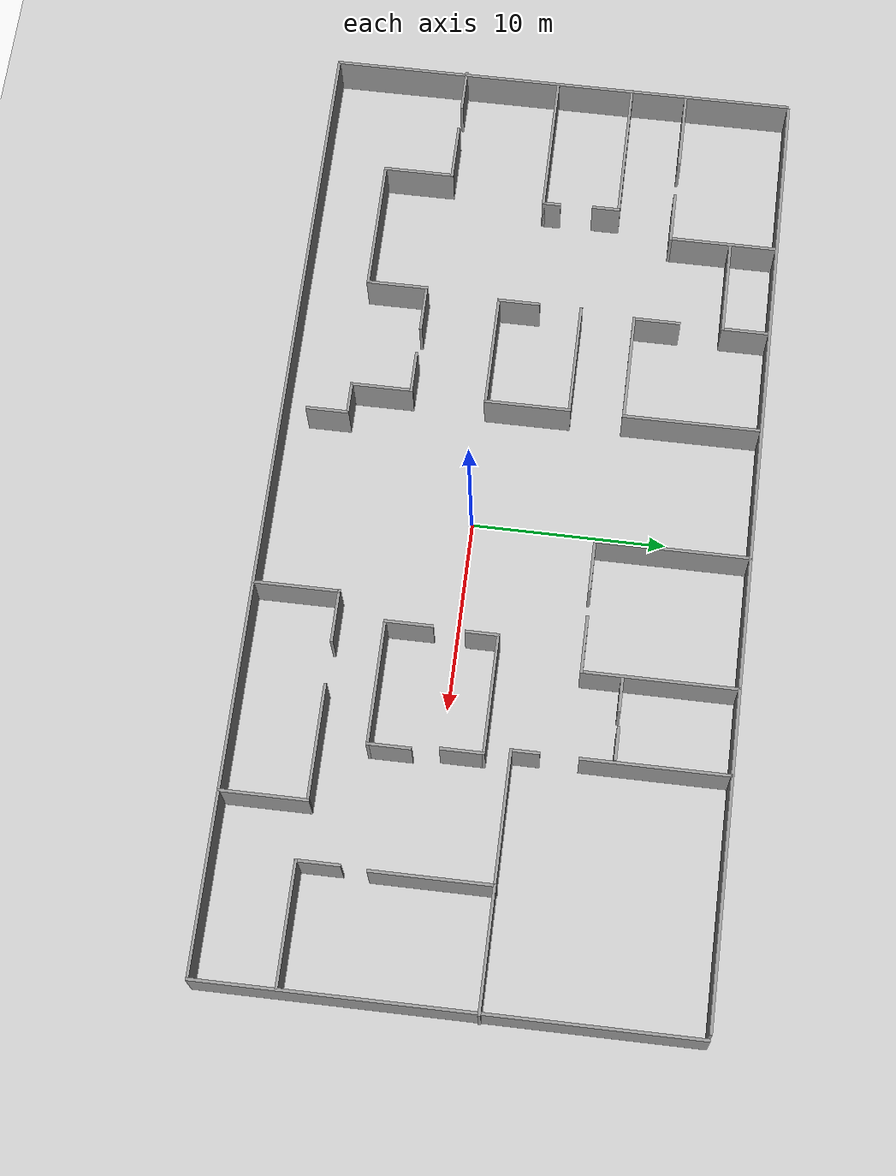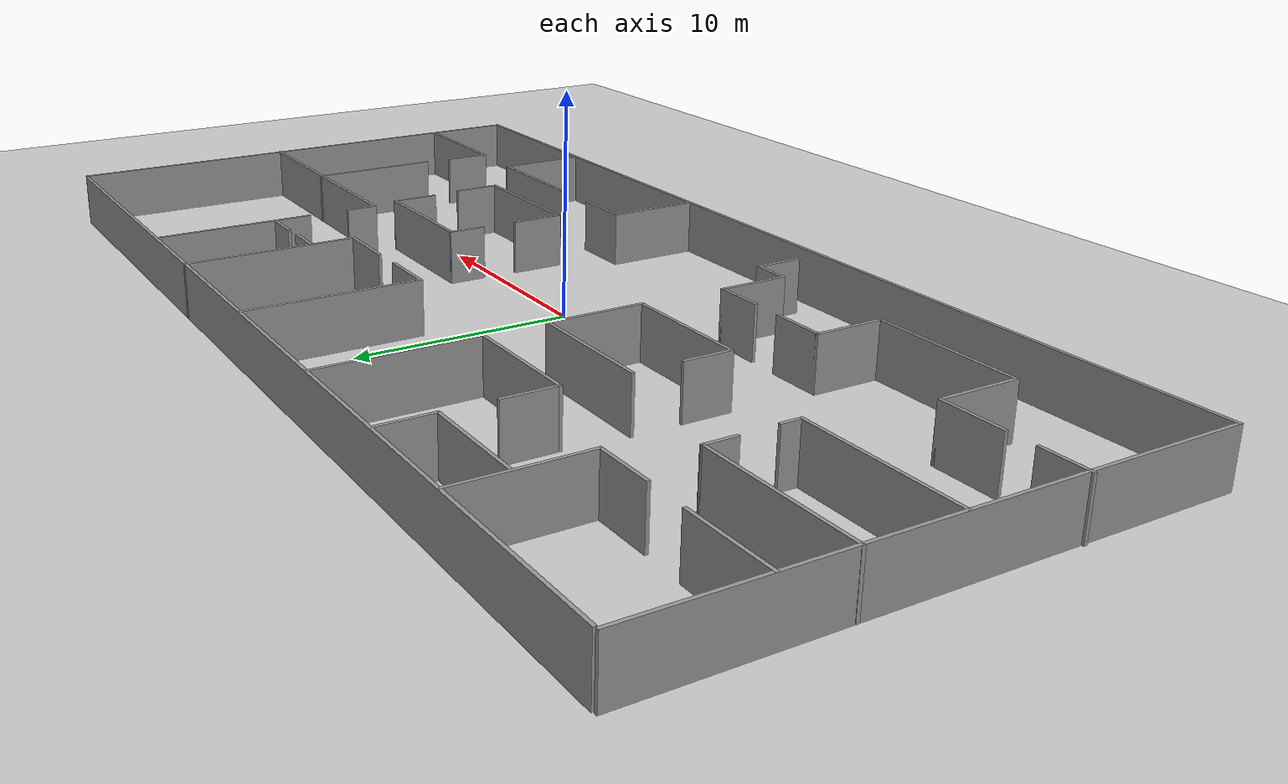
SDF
<sdf version="1.6">
 <world name="default">
  <light name="sun" type="directional">
   <pose>0 0 10 0 -0 0</pose>
   <diffuse>0.8 0.8 0.8 1</diffuse>
   <specular>0.2 0.2 0.2 1</specular>
   <attenuation>
    <range>1000</range>
    <constant>0.9</constant>
    <linear>0.01</linear>
    <quadratic>0.001</quadratic>
   </attenuation>
   <direction>-0.5 0.1 -0.9</direction>
  </light>
  <model name="ground_plane">
   <static>1</static>
   <link name="link">
    <collision name="collision">
     <geometry><plane><normal>0 0 1</normal><size>100 100</size></plane></geometry>
     <surface><friction><ode><mu>100</mu><mu2>50</mu2></ode></friction></surface>
    </collision>
    <visual name="visual">
     <cast_shadows>0</cast_shadows>
     <geometry><plane><normal>0 0 1</normal><size>100 100</size></plane></geometry>
     <material>
      <script><uri>file://media/materials/scripts/gazebo.material</uri><name>Gazebo/Grey</name></script>
     </material>
    </visual>
   </link>
  </model>
  <gravity>0 0 -9.8</gravity>
  <magnetic_field>6e-06 2.3e-05 -4.2e-05</magnetic_field>
  <atmosphere type="adiabatic"/>
  <physics name="default_physics" default="0" type="ode">
   <max_step_size>0.001</max_step_size>
   <real_time_factor>1</real_time_factor>
   <real_time_update_rate>1000</real_time_update_rate>
  </physics>
  <scene><ambient>0.4 0.4 0.4 1</ambient><background>0.7 0.7 0.7 1</background><shadows>1</shadows></scene>
  <spherical_coordinates>
   <surface_model>EARTH_WGS84</surface_model>
   <latitude_deg>0</latitude_deg>
   <longitude_deg>0</longitude_deg>
   <elevation>0</elevation>
   <heading_deg>0</heading_deg>
  </spherical_coordinates>
  <model name="simple_workshop">
   <pose>-0.060453 1.96755 0 0 -0 0</pose>
   <link name="Wall_100">
    <collision name="Wall_100_Collision">
     <geometry><box><size>2.25 0.15 2.5</size></box></geometry>
     <pose>0 0 1.25 0 -0 0</pose>
    </collision>
    <visual name="Wall_100_Visual">
     <pose>0 0 1.25 0 -0 0</pose>
     <geometry><box><size>2.25 0.15 2.5</size></box></geometry>
     <material>
      <script><uri>file://media/materials/scripts/gazebo.material</uri><name>Gazebo/Grey</name></script>
      <ambient>1 1 1 1</ambient>
     </material>
     <meta><layer>0</layer></meta>
    </visual>
    <pose>-7.13341 -5.85126 0 0 -0 0</pose>
   </link>
   <link name="Wall_101">
    <collision name="Wall_101_Collision">
     <geometry><box><size>3.25 0.15 2.5</size></box></geometry>
     <pose>0 0 1.25 0 -0 0</pose>
    </collision>
    <visual name="Wall_101_Visual">
     <pose>0 0 1.25 0 -0 0</pose>
     <geometry><box><size>3.25 0.15 2.5</size></box></geometry>
     <material>
      <script><uri>file://media/materials/scripts/gazebo.material</uri><name>Gazebo/Grey</name></script>
      <ambient>1 1 1 1</ambient>
     </material>
     <meta><layer>0</layer></meta>
    </visual>
    <pose>-6.08341 -7.40126 0 0 -0 -1.5708</pose>
   </link>
   <link name="Wall_102">
    <collision name="Wall_102_Collision">
     <geometry><box><size>1.75 0.15 2.5</size></box></geometry>
     <pose>0 0 1.25 0 -0 0</pose>
    </collision>
    <visual name="Wall_102_Visual">
     <pose>0 0 1.25 0 -0 0</pose>
     <geometry><box><size>1.75 0.15 2.5</size></box></geometry>
     <material>
      <script><uri>file://media/materials/scripts/gazebo.material</uri><name>Gazebo/Grey</name></script>
      <ambient>1 1 1 1</ambient>
     </material>
     <meta><layer>0</layer></meta>
    </visual>
    <pose>-5.28341 -8.95126 0 0 -0 0</pose>
   </link>
   <link name="Wall_103">
    <collision name="Wall_103_Collision">
     <geometry><box><size>2.25 0.15 2.5</size></box></geometry>
     <pose>0 0 1.25 0 -0 0</pose>
    </collision>
    <visual name="Wall_103_Visual">
     <pose>0 0 1.25 0 -0 0</pose>
     <geometry><box><size>2.25 0.15 2.5</size></box></geometry>
     <material>
      <script><uri>file://media/materials/scripts/gazebo.material</uri><name>Gazebo/Grey</name></script>
      <ambient>1 1 1 1</ambient>
     </material>
     <meta><layer>0</layer></meta>
    </visual>
    <pose>-4.48341 -10.0013 0 0 -0 -1.5708</pose>
   </link>
   <link name="Wall_106">
    <collision name="Wall_106_Collision">
     <geometry><box><size>4.5 0.15 2.5</size></box></geometry>
     <pose>0 0 1.25 0 -0 0</pose>
    </collision>
    <visual name="Wall_106_Visual">
     <pose>0 0 1.25 0 -0 0</pose>
     <geometry><box><size>4.5 0.15 2.5</size></box></geometry>
     <material>
      <script><uri>file://media/materials/scripts/gazebo.material</uri><name>Gazebo/Grey</name></script>
      <ambient>1 1 1 1</ambient>
     </material>
     <meta><layer>0</layer></meta>
    </visual>
    <pose>5.24768 -10.165 0 0 -0 1.5708</pose>
   </link>
   <link name="Wall_107">
    <collision name="Wall_107_Collision">
     <geometry><box><size>2.75 0.15 2.5</size></box></geometry>
     <pose>0 0 1.25 0 -0 0</pose>
    </collision>
    <visual name="Wall_107_Visual">
     <pose>0 0 1.25 0 -0 0</pose>
     <geometry><box><size>2.75 0.15 2.5</size></box></geometry>
     <material>
      <script><uri>file://media/materials/scripts/gazebo.material</uri><name>Gazebo/Grey</name></script>
      <ambient>1 1 1 1</ambient>
     </material>
     <meta><layer>0</layer></meta>
    </visual>
    <pose>6.54768 -7.98999 0 0 -0 0</pose>
   </link>
   <link name="Wall_109">
    <collision name="Wall_109_Collision">
     <geometry><box><size>6 0.15 2.5</size></box></geometry>
     <pose>0 0 1.25 0 -0 0</pose>
    </collision>
    <visual name="Wall_109_Visual">
     <pose>0 0 1.25 0 -0 0</pose>
     <geometry><box><size>6 0.15 2.5</size></box></geometry>
     <material>
      <script><uri>file://media/materials/scripts/gazebo.material</uri><name>Gazebo/Grey</name></script>
      <ambient>1 1 1 1</ambient>
     </material>
     <meta><layer>0</layer></meta>
    </visual>
    <pose>13.0977 -7.97782 0 0 -0 0</pose>
   </link>
   <link name="Wall_110">
    <collision name="Wall_110_Collision">
     <geometry><box><size>4.5 0.15 2.5</size></box></geometry>
     <pose>0 0 1.25 0 -0 0</pose>
    </collision>
    <visual name="Wall_110_Visual">
     <pose>0 0 1.25 0 -0 0</pose>
     <geometry><box><size>4.5 0.15 2.5</size></box></geometry>
     <material>
      <script><uri>file://media/materials/scripts/gazebo.material</uri><name>Gazebo/Grey</name></script>
      <ambient>1 1 1 1</ambient>
     </material>
     <meta><layer>0</layer></meta>
    </visual>
    <pose>16.0227 -10.1528 0 0 -0 -1.5708</pose>
   </link>
   <link name="Wall_112">
    <collision name="Wall_112_Collision">
     <geometry><box><size>6.25 0.15 2.5</size></box></geometry>
     <pose>0 0 1.25 0 -0 0</pose>
    </collision>
    <visual name="Wall_112_Visual">
     <pose>0 0 1.25 0 -0 0</pose>
     <geometry><box><size>6.25 0.15 2.5</size></box></geometry>
     <material>
      <script><uri>file://media/materials/scripts/gazebo.material</uri><name>Gazebo/Grey</name></script>
      <ambient>1 1 1 1</ambient>
     </material>
     <meta><layer>0</layer></meta>
    </visual>
    <pose>19.1081 -1.52956 0 0 -0 -1.5708</pose>
   </link>
   <link name="Wall_114">
    <collision name="Wall_114_Collision">
     <geometry><box><size>2.25 0.15 2.5</size></box></geometry>
     <pose>0 0 1.25 0 -0 0</pose>
    </collision>
    <visual name="Wall_114_Visual">
     <pose>0 0 1.25 0 -0 0</pose>
     <geometry><box><size>2.25 0.15 2.5</size></box></geometry>
     <material>
      <script><uri>file://media/materials/scripts/gazebo.material</uri><name>Gazebo/Grey</name></script>
      <ambient>1 1 1 1</ambient>
     </material>
     <meta><layer>0</layer></meta>
    </visual>
    <pose>19.0026 -7.05781 0 0 -0 -1.5708</pose>
   </link>
   <link name="Wall_115">
    <collision name="Wall_115_Collision">
     <geometry><box><size>6.25 0.15 2.5</size></box></geometry>
     <pose>0 0 1.25 0 -0 0</pose>
    </collision>
    <visual name="Wall_115_Visual">
     <pose>0 0 1.25 0 -0 0</pose>
     <geometry><box><size>6.25 0.15 2.5</size></box></geometry>
     <material>
      <script><uri>file://media/materials/scripts/gazebo.material</uri><name>Gazebo/Grey</name></script>
      <ambient>1 1 1 1</ambient>
     </material>
     <meta><layer>0</layer></meta>
    </visual>
    <pose>22.0526 -8.10781 0 0 -0 0</pose>
   </link>
   <link name="Wall_34">
    <collision name="Wall_34_Collision">
     <geometry><box><size>50 0.15 2.5</size></box></geometry>
     <pose>0 0 1.25 0 -0 0</pose>
    </collision>
    <visual name="Wall_34_Visual">
     <pose>0 0 1.25 0 -0 0</pose>
     <geometry><box><size>50 0.15 2.5</size></box></geometry>
     <material>
      <script><uri>file://media/materials/scripts/gazebo.material</uri><name>Gazebo/Grey</name></script>
      <ambient>1 1 1 1</ambient>
     </material>
     <meta><layer>0</layer></meta>
    </visual>
    <pose>-0.054311 12.3272 0 0 -0 0</pose>
   </link>
   <link name="Wall_38">
    <collision name="Wall_38_Collision">
     <geometry><box><size>24.75 0.15 2.5</size></box></geometry>
     <pose>0 0 1.25 0 -0 0</pose>
    </collision>
    <visual name="Wall_38_Visual">
     <pose>0 0 1.25 0 -0 0</pose>
     <geometry><box><size>24.75 0.15 2.5</size></box></geometry>
     <material>
      <script><uri>file://media/materials/scripts/gazebo.material</uri><name>Gazebo/Grey</name></script>
      <ambient>1 1 1 1</ambient>
     </material>
     <meta><layer>0</layer></meta>
    </visual>
    <pose>-25.1613 -0.03929 0 0 -0 -1.5708</pose>
   </link>
   <link name="Wall_39">
    <collision name="Wall_39_Collision">
     <geometry><box><size>50.5 0.15 2.5</size></box></geometry>
     <pose>0 0 1.25 0 -0 0</pose>
    </collision>
    <visual name="Wall_39_Visual">
     <pose>0 0 1.25 0 -0 0</pose>
     <geometry><box><size>50.5 0.15 2.5</size></box></geometry>
     <material>
      <script><uri>file://media/materials/scripts/gazebo.material</uri><name>Gazebo/Grey</name></script>
      <ambient>1 1 1 1</ambient>
     </material>
     <meta><layer>0</layer></meta>
    </visual>
    <pose>0.013678 -12.3393 0 0 -0 0</pose>
   </link>
   <link name="Wall_40">
    <collision name="Wall_40_Collision">
     <geometry><box><size>24.75 0.15 2.5</size></box></geometry>
     <pose>0 0 1.25 0 -0 0</pose>
    </collision>
    <visual name="Wall_40_Visual">
     <pose>0 0 1.25 0 -0 0</pose>
     <geometry><box><size>24.75 0.15 2.5</size></box></geometry>
     <material>
      <script><uri>file://media/materials/scripts/gazebo.material</uri><name>Gazebo/Grey</name></script>
      <ambient>1 1 1 1</ambient>
     </material>
     <meta><layer>0</layer></meta>
    </visual>
    <pose>25.1887 -0.03929 0 0 -0 1.5708</pose>
   </link>
   <link name="Wall_44">
    <collision name="Wall_44_Collision">
     <geometry><box><size>4.25 0.15 2.5</size></box></geometry>
     <pose>0 0 1.25 0 -0 0</pose>
    </collision>
    <visual name="Wall_44_Visual">
     <pose>0 0 1.25 0 -0 0</pose>
     <geometry><box><size>4.25 0.15 2.5</size></box></geometry>
     <material>
      <script><uri>file://media/materials/scripts/gazebo.material</uri><name>Gazebo/Grey</name></script>
      <ambient>1 1 1 1</ambient>
     </material>
     <meta><layer>0</layer></meta>
    </visual>
    <pose>-23.1079 6.73064 0 0 -0 0</pose>
   </link>
   <link name="Wall_46">
    <collision name="Wall_46_Collision">
     <geometry><box><size>5.75 0.15 2.5</size></box></geometry>
     <pose>0 0 1.25 0 -0 0</pose>
    </collision>
    <visual name="Wall_46_Visual">
     <pose>0 0 1.25 0 -0 0</pose>
     <geometry><box><size>5.75 0.15 2.5</size></box></geometry>
     <material>
      <script><uri>file://media/materials/scripts/gazebo.material</uri><name>Gazebo/Grey</name></script>
      <ambient>1 1 1 1</ambient>
     </material>
     <meta><layer>0</layer></meta>
    </visual>
    <pose>-16.4318 9.488 0 0 -0 -1.5708</pose>
   </link>
   <link name="Wall_47">
    <collision name="Wall_47_Collision">
     <geometry><box><size>2.75 0.15 2.5</size></box></geometry>
     <pose>0 0 1.25 0 -0 0</pose>
    </collision>
    <visual name="Wall_47_Visual">
     <pose>0 0 1.25 0 -0 0</pose>
     <geometry><box><size>2.75 0.15 2.5</size></box></geometry>
     <material>
      <script><uri>file://media/materials/scripts/gazebo.material</uri><name>Gazebo/Grey</name></script>
      <ambient>1 1 1 1</ambient>
     </material>
     <meta><layer>0</layer></meta>
    </visual>
    <pose>-17.7318 6.688 0 0 -0 3.14159</pose>
   </link>
   <link name="Wall_49">
    <collision name="Wall_49_Collision">
     <geometry><box><size>5 0.15 2.5</size></box></geometry>
     <pose>0 0 1.25 0 -0 0</pose>
    </collision>
    <visual name="Wall_49_Visual">
     <pose>0 0 1.25 0 -0 0</pose>
     <geometry><box><size>5 0.15 2.5</size></box></geometry>
     <material>
      <script><uri>file://media/materials/scripts/gazebo.material</uri><name>Gazebo/Grey</name></script>
      <ambient>1 1 1 1</ambient>
     </material>
     <meta><layer>0</layer></meta>
    </visual>
    <pose>-13.8672 9.86876 0 0 -0 0</pose>
   </link>
   <link name="Wall_50">
    <collision name="Wall_50_Collision">
     <geometry><box><size>2.5 0.15 2.5</size></box></geometry>
     <pose>0 0 1.25 0 -0 0</pose>
    </collision>
    <visual name="Wall_50_Visual">
     <pose>0 0 1.25 0 -0 0</pose>
     <geometry><box><size>2.5 0.15 2.5</size></box></geometry>
     <material>
      <script><uri>file://media/materials/scripts/gazebo.material</uri><name>Gazebo/Grey</name></script>
      <ambient>1 1 1 1</ambient>
     </material>
     <meta><layer>0</layer></meta>
    </visual>
    <pose>-11.4422 11.0438 0 0 -0 1.5708</pose>
   </link>
   <link name="Wall_52">
    <collision name="Wall_52_Collision">
     <geometry><box><size>2.5 0.15 2.5</size></box></geometry>
     <pose>0 0 1.25 0 -0 0</pose>
    </collision>
    <visual name="Wall_52_Visual">
     <pose>0 0 1.25 0 -0 0</pose>
     <geometry><box><size>2.5 0.15 2.5</size></box></geometry>
     <material>
      <script><uri>file://media/materials/scripts/gazebo.material</uri><name>Gazebo/Grey</name></script>
      <ambient>1 1 1 1</ambient>
     </material>
     <meta><layer>0</layer></meta>
    </visual>
    <pose>-11.5002 6.39109 0 0 -0 -1.5708</pose>
   </link>
   <link name="Wall_53">
    <collision name="Wall_53_Collision">
     <geometry><box><size>5.75 0.15 2.5</size></box></geometry>
     <pose>0 0 1.25 0 -0 0</pose>
    </collision>
    <visual name="Wall_53_Visual">
     <pose>0 0 1.25 0 -0 0</pose>
     <geometry><box><size>5.75 0.15 2.5</size></box></geometry>
     <material>
      <script><uri>file://media/materials/scripts/gazebo.material</uri><name>Gazebo/Grey</name></script>
      <ambient>1 1 1 1</ambient>
     </material>
     <meta><layer>0</layer></meta>
    </visual>
    <pose>-8.70022 5.21609 0 0 -0 0</pose>
   </link>
   <link name="Wall_54">
    <collision name="Wall_54_Collision">
     <geometry><box><size>7.25 0.15 2.5</size></box></geometry>
     <pose>0 0 1.25 0 -0 0</pose>
    </collision>
    <visual name="Wall_54_Visual">
     <pose>0 0 1.25 0 -0 0</pose>
     <geometry><box><size>7.25 0.15 2.5</size></box></geometry>
     <material>
      <script><uri>file://media/materials/scripts/gazebo.material</uri><name>Gazebo/Grey</name></script>
      <ambient>1 1 1 1</ambient>
     </material>
     <meta><layer>0</layer></meta>
    </visual>
    <pose>-5.90022 8.76609 0 0 -0 1.5708</pose>
   </link>
   <link name="Wall_56">
    <collision name="Wall_56_Collision">
     <geometry><box><size>8 0.15 2.5</size></box></geometry>
     <pose>0 0 1.25 0 -0 0</pose>
    </collision>
    <visual name="Wall_56_Visual">
     <pose>0 0 1.25 0 -0 0</pose>
     <geometry><box><size>8 0.15 2.5</size></box></geometry>
     <material>
      <script><uri>file://media/materials/scripts/gazebo.material</uri><name>Gazebo/Grey</name></script>
      <ambient>1 1 1 1</ambient>
     </material>
     <meta><layer>0</layer></meta>
    </visual>
    <pose>1.1279 8.37002 0 0 -0 -1.5708</pose>
   </link>
   <link name="Wall_57">
    <collision name="Wall_57_Collision">
     <geometry><box><size>2.75 0.15 2.5</size></box></geometry>
     <pose>0 0 1.25 0 -0 0</pose>
    </collision>
    <visual name="Wall_57_Visual">
     <pose>0 0 1.25 0 -0 0</pose>
     <geometry><box><size>2.75 0.15 2.5</size></box></geometry>
     <material>
      <script><uri>file://media/materials/scripts/gazebo.material</uri><name>Gazebo/Grey</name></script>
      <ambient>1 1 1 1</ambient>
     </material>
     <meta><layer>0</layer></meta>
    </visual>
    <pose>2.4279 4.44502 0 0 -0 0</pose>
   </link>
   <link name="Wall_59">
    <collision name="Wall_59_Collision">
     <geometry><box><size>3 0.15 2.5</size></box></geometry>
     <pose>0 0 1.25 0 -0 0</pose>
    </collision>
    <visual name="Wall_59_Visual">
     <pose>0 0 1.25 0 -0 0</pose>
     <geometry><box><size>3 0.15 2.5</size></box></geometry>
     <material>
      <script><uri>file://media/materials/scripts/gazebo.material</uri><name>Gazebo/Grey</name></script>
      <ambient>1 1 1 1</ambient>
     </material>
     <meta><layer>0</layer></meta>
    </visual>
    <pose>6.61495 4.48999 0 0 -0 0</pose>
   </link>
   <link name="Wall_62">
    <collision name="Wall_62_Collision">
     <geometry><box><size>8 0.15 2.5</size></box></geometry>
     <pose>0 0 1.25 0 -0 0</pose>
    </collision>
    <visual name="Wall_62_Visual">
     <pose>0 0 1.25 0 -0 0</pose>
     <geometry><box><size>8 0.15 2.5</size></box></geometry>
     <material>
      <script><uri>file://media/materials/scripts/gazebo.material</uri><name>Gazebo/Grey</name></script>
      <ambient>1 1 1 1</ambient>
     </material>
     <meta><layer>0</layer></meta>
    </visual>
    <pose>8.03995 8.41499 0 0 -0 1.5708</pose>
   </link>
   <link name="Wall_64">
    <collision name="Wall_64_Collision">
     <geometry><box><size>1.75 0.15 2.5</size></box></geometry>
     <pose>0 0 1.25 0 -0 0</pose>
    </collision>
    <visual name="Wall_64_Visual">
     <pose>0 0 1.25 0 -0 0</pose>
     <geometry><box><size>1.75 0.15 2.5</size></box></geometry>
     <material>
      <script><uri>file://media/materials/scripts/gazebo.material</uri><name>Gazebo/Grey</name></script>
      <ambient>1 1 1 1</ambient>
     </material>
     <meta><layer>0</layer></meta>
    </visual>
    <pose>8.98454 6.54152 0 0 -0 0</pose>
   </link>
   <link name="Wall_66">
    <collision name="Wall_66_Collision">
     <geometry><box><size>1.75 0.15 2.5</size></box></geometry>
     <pose>0 0 1.25 0 -0 0</pose>
    </collision>
    <visual name="Wall_66_Visual">
     <pose>0 0 1.25 0 -0 0</pose>
     <geometry><box><size>1.75 0.15 2.5</size></box></geometry>
     <material>
      <script><uri>file://media/materials/scripts/gazebo.material</uri><name>Gazebo/Grey</name></script>
      <ambient>1 1 1 1</ambient>
     </material>
     <meta><layer>0</layer></meta>
    </visual>
    <pose>11.4765 6.59424 0 0 -0 0</pose>
   </link>
   <link name="Wall_68">
    <collision name="Wall_68_Collision">
     <geometry><box><size>7.5 0.15 2.5</size></box></geometry>
     <pose>0 0 1.25 0 -0 0</pose>
    </collision>
    <visual name="Wall_68_Visual">
     <pose>0 0 1.25 0 -0 0</pose>
     <geometry><box><size>7.5 0.15 2.5</size></box></geometry>
     <material>
      <script><uri>file://media/materials/scripts/gazebo.material</uri><name>Gazebo/Grey</name></script>
      <ambient>1 1 1 1</ambient>
     </material>
     <meta><layer>0</layer></meta>
    </visual>
    <pose>12.4461 8.58432 0 0 -0 1.5708</pose>
   </link>
   <link name="Wall_70">
    <collision name="Wall_70_Collision">
     <geometry><box><size>1.5 0.15 2.5</size></box></geometry>
     <pose>0 0 1.25 0 -0 0</pose>
    </collision>
    <visual name="Wall_70_Visual">
     <pose>0 0 1.25 0 -0 0</pose>
     <geometry><box><size>1.5 0.15 2.5</size></box></geometry>
     <material>
      <script><uri>file://media/materials/scripts/gazebo.material</uri><name>Gazebo/Grey</name></script>
      <ambient>1 1 1 1</ambient>
     </material>
     <meta><layer>0</layer></meta>
    </visual>
    <pose>12.4057 2.17108 0 0 -0 -1.5708</pose>
   </link>
   <link name="Wall_71">
    <collision name="Wall_71_Collision">
     <geometry><box><size>13 0.15 2.5</size></box></geometry>
     <pose>0 0 1.25 0 -0 0</pose>
    </collision>
    <visual name="Wall_71_Visual">
     <pose>0 0 1.25 0 -0 0</pose>
     <geometry><box><size>13 0.15 2.5</size></box></geometry>
     <material>
      <script><uri>file://media/materials/scripts/gazebo.material</uri><name>Gazebo/Grey</name></script>
      <ambient>1 1 1 1</ambient>
     </material>
     <meta><layer>0</layer></meta>
    </visual>
    <pose>18.8307 1.49608 0 0 -0 0</pose>
   </link>
   <link name="Wall_73">
    <collision name="Wall_73_Collision">
     <geometry><box><size>7.5 0.15 2.5</size></box></geometry>
     <pose>0 0 1.25 0 -0 0</pose>
    </collision>
    <visual name="Wall_73_Visual">
     <pose>0 0 1.25 0 -0 0</pose>
     <geometry><box><size>7.5 0.15 2.5</size></box></geometry>
     <material>
      <script><uri>file://media/materials/scripts/gazebo.material</uri><name>Gazebo/Grey</name></script>
      <ambient>1 1 1 1</ambient>
     </material>
     <meta><layer>0</layer></meta>
    </visual>
    <pose>-21.5051 3.7719 0 0 -0 0</pose>
   </link>
   <link name="Wall_74">
    <collision name="Wall_74_Collision">
     <geometry><box><size>1.5 0.15 2.5</size></box></geometry>
     <pose>0 0 1.25 0 -0 0</pose>
    </collision>
    <visual name="Wall_74_Visual">
     <pose>0 0 1.25 0 -0 0</pose>
     <geometry><box><size>1.5 0.15 2.5</size></box></geometry>
     <material>
      <script><uri>file://media/materials/scripts/gazebo.material</uri><name>Gazebo/Grey</name></script>
      <ambient>1 1 1 1</ambient>
     </material>
     <meta><layer>0</layer></meta>
    </visual>
    <pose>-17.8301 3.0969 0 0 -0 -1.5708</pose>
   </link>
   <link name="Wall_76">
    <collision name="Wall_76_Collision">
     <geometry><box><size>1 0.15 2.5</size></box></geometry>
     <pose>0 0 1.25 0 -0 0</pose>
    </collision>
    <visual name="Wall_76_Visual">
     <pose>0 0 1.25 0 -0 0</pose>
     <geometry><box><size>1 0.15 2.5</size></box></geometry>
     <material>
      <script><uri>file://media/materials/scripts/gazebo.material</uri><name>Gazebo/Grey</name></script>
      <ambient>1 1 1 1</ambient>
     </material>
     <meta><layer>0</layer></meta>
    </visual>
    <pose>-17.7762 0.161175 0 0 -0 -1.5708</pose>
   </link>
   <link name="Wall_77">
    <collision name="Wall_77_Collision">
     <geometry><box><size>7.5 0.15 2.5</size></box></geometry>
     <pose>0 0 1.25 0 -0 0</pose>
    </collision>
    <visual name="Wall_77_Visual">
     <pose>0 0 1.25 0 -0 0</pose>
     <geometry><box><size>7.5 0.15 2.5</size></box></geometry>
     <material>
      <script><uri>file://media/materials/scripts/gazebo.material</uri><name>Gazebo/Grey</name></script>
      <ambient>1 1 1 1</ambient>
     </material>
     <meta><layer>0</layer></meta>
    </visual>
    <pose>-21.4512 -0.263825 0 0 -0 3.14159</pose>
   </link>
   <link name="Wall_79">
    <collision name="Wall_79_Collision">
     <geometry><box><size>6 0.15 2.5</size></box></geometry>
     <pose>0 0 1.25 0 -0 0</pose>
    </collision>
    <visual name="Wall_79_Visual">
     <pose>0 0 1.25 0 -0 0</pose>
     <geometry><box><size>6 0.15 2.5</size></box></geometry>
     <material>
      <script><uri>file://media/materials/scripts/gazebo.material</uri><name>Gazebo/Grey</name></script>
      <ambient>1 1 1 1</ambient>
     </material>
     <meta><layer>0</layer></meta>
    </visual>
    <pose>-8.83567 2.39529 0 0 -0 0</pose>
   </link>
   <link name="Wall_80">
    <collision name="Wall_80_Collision">
     <geometry><box><size>4.5 0.15 2.5</size></box></geometry>
     <pose>0 0 1.25 0 -0 0</pose>
    </collision>
    <visual name="Wall_80_Visual">
     <pose>0 0 1.25 0 -0 0</pose>
     <geometry><box><size>4.5 0.15 2.5</size></box></geometry>
     <material>
      <script><uri>file://media/materials/scripts/gazebo.material</uri><name>Gazebo/Grey</name></script>
      <ambient>1 1 1 1</ambient>
     </material>
     <meta><layer>0</layer></meta>
    </visual>
    <pose>-5.91066 0.220287 0 0 -0 -1.5708</pose>
   </link>
   <link name="Wall_81">
    <collision name="Wall_81_Collision">
     <geometry><box><size>6 0.15 2.5</size></box></geometry>
     <pose>0 0 1.25 0 -0 0</pose>
    </collision>
    <visual name="Wall_81_Visual">
     <pose>0 0 1.25 0 -0 0</pose>
     <geometry><box><size>6 0.15 2.5</size></box></geometry>
     <material>
      <script><uri>file://media/materials/scripts/gazebo.material</uri><name>Gazebo/Grey</name></script>
      <ambient>1 1 1 1</ambient>
     </material>
     <meta><layer>0</layer></meta>
    </visual>
    <pose>-8.83567 -1.95471 0 0 -0 3.14159</pose>
   </link>
   <link name="Wall_82">
    <collision name="Wall_82_Collision">
     <geometry><box><size>2.25 0.15 2.5</size></box></geometry>
     <pose>0 0 1.25 0 -0 0</pose>
    </collision>
    <visual name="Wall_82_Visual">
     <pose>0 0 1.25 0 -0 0</pose>
     <geometry><box><size>2.25 0.15 2.5</size></box></geometry>
     <material>
      <script><uri>file://media/materials/scripts/gazebo.material</uri><name>Gazebo/Grey</name></script>
      <ambient>1 1 1 1</ambient>
     </material>
     <meta><layer>0</layer></meta>
    </visual>
    <pose>-11.7607 -0.904713 0 0 -0 1.5708</pose>
   </link>
   <link name="Wall_84">
    <collision name="Wall_84_Collision">
     <geometry><box><size>1.75 0.15 2.5</size></box></geometry>
     <pose>0 0 1.25 0 -0 0</pose>
    </collision>
    <visual name="Wall_84_Visual">
     <pose>0 0 1.25 0 -0 0</pose>
     <geometry><box><size>1.75 0.15 2.5</size></box></geometry>
     <material>
      <script><uri>file://media/materials/scripts/gazebo.material</uri><name>Gazebo/Grey</name></script>
      <ambient>1 1 1 1</ambient>
     </material>
     <meta><layer>0</layer></meta>
    </visual>
    <pose>6.62272 -0.609027 0 0 -0 1.5708</pose>
   </link>
   <link name="Wall_85">
    <collision name="Wall_85_Collision">
     <geometry><box><size>6.25 0.15 2.5</size></box></geometry>
     <pose>0 0 1.25 0 -0 0</pose>
    </collision>
    <visual name="Wall_85_Visual">
     <pose>0 0 1.25 0 -0 0</pose>
     <geometry><box><size>6.25 0.15 2.5</size></box></geometry>
     <material>
      <script><uri>file://media/materials/scripts/gazebo.material</uri><name>Gazebo/Grey</name></script>
      <ambient>1 1 1 1</ambient>
     </material>
     <meta><layer>0</layer></meta>
    </visual>
    <pose>9.67272 0.190973 0 0 -0 0</pose>
   </link>
   <link name="Wall_86">
    <collision name="Wall_86_Collision">
     <geometry><box><size>2.25 0.15 2.5</size></box></geometry>
     <pose>0 0 1.25 0 -0 0</pose>
    </collision>
    <visual name="Wall_86_Visual">
     <pose>0 0 1.25 0 -0 0</pose>
     <geometry><box><size>2.25 0.15 2.5</size></box></geometry>
     <material>
      <script><uri>file://media/materials/scripts/gazebo.material</uri><name>Gazebo/Grey</name></script>
      <ambient>1 1 1 1</ambient>
     </material>
     <meta><layer>0</layer></meta>
    </visual>
    <pose>12.7227 -0.859027 0 0 -0 -1.5708</pose>
   </link>
   <link name="Wall_88">
    <collision name="Wall_88_Collision">
     <geometry><box><size>2.5 0.15 2.5</size></box></geometry>
     <pose>0 0 1.25 0 -0 0</pose>
    </collision>
    <visual name="Wall_88_Visual">
     <pose>0 0 1.25 0 -0 0</pose>
     <geometry><box><size>2.5 0.15 2.5</size></box></geometry>
     <material>
      <script><uri>file://media/materials/scripts/gazebo.material</uri><name>Gazebo/Grey</name></script>
      <ambient>1 1 1 1</ambient>
     </material>
     <meta><layer>0</layer></meta>
    </visual>
    <pose>6.54181 -4.32362 0 0 -0 -1.5708</pose>
   </link>
   <link name="Wall_89">
    <collision name="Wall_89_Collision">
     <geometry><box><size>6.5 0.15 2.5</size></box></geometry>
     <pose>0 0 1.25 0 -0 0</pose>
    </collision>
    <visual name="Wall_89_Visual">
     <pose>0 0 1.25 0 -0 0</pose>
     <geometry><box><size>6.5 0.15 2.5</size></box></geometry>
     <material>
      <script><uri>file://media/materials/scripts/gazebo.material</uri><name>Gazebo/Grey</name></script>
      <ambient>1 1 1 1</ambient>
     </material>
     <meta><layer>0</layer></meta>
    </visual>
    <pose>9.71681 -5.49862 0 0 -0 0</pose>
   </link>
   <link name="Wall_90">
    <collision name="Wall_90_Collision">
     <geometry><box><size>2.25 0.15 2.5</size></box></geometry>
     <pose>0 0 1.25 0 -0 0</pose>
    </collision>
    <visual name="Wall_90_Visual">
     <pose>0 0 1.25 0 -0 0</pose>
     <geometry><box><size>2.25 0.15 2.5</size></box></geometry>
     <material>
      <script><uri>file://media/materials/scripts/gazebo.material</uri><name>Gazebo/Grey</name></script>
      <ambient>1 1 1 1</ambient>
     </material>
     <meta><layer>0</layer></meta>
    </visual>
    <pose>12.8918 -4.44862 0 0 -0 1.5708</pose>
   </link>
   <link name="Wall_92">
    <collision name="Wall_92_Collision">
     <geometry><box><size>2.25 0.15 2.5</size></box></geometry>
     <pose>0 0 1.25 0 -0 0</pose>
    </collision>
    <visual name="Wall_92_Visual">
     <pose>0 0 1.25 0 -0 0</pose>
     <geometry><box><size>2.25 0.15 2.5</size></box></geometry>
     <material>
      <script><uri>file://media/materials/scripts/gazebo.material</uri><name>Gazebo/Grey</name></script>
      <ambient>1 1 1 1</ambient>
     </material>
     <meta><layer>0</layer></meta>
    </visual>
    <pose>-24.2057 -5.32534 0 0 -0 0</pose>
   </link>
   <link name="Wall_94">
    <collision name="Wall_94_Collision">
     <geometry><box><size>3 0.15 2.5</size></box></geometry>
     <pose>0 0 1.25 0 -0 0</pose>
    </collision>
    <visual name="Wall_94_Visual">
     <pose>0 0 1.25 0 -0 0</pose>
     <geometry><box><size>3 0.15 2.5</size></box></geometry>
     <material>
      <script><uri>file://media/materials/scripts/gazebo.material</uri><name>Gazebo/Grey</name></script>
      <ambient>1 1 1 1</ambient>
     </material>
     <meta><layer>0</layer></meta>
    </visual>
    <pose>-20.311 -5.32534 0 0 -0 0</pose>
   </link>
   <link name="Wall_95">
    <collision name="Wall_95_Collision">
     <geometry><box><size>3.75 0.15 2.5</size></box></geometry>
     <pose>0 0 1.25 0 -0 0</pose>
    </collision>
    <visual name="Wall_95_Visual">
     <pose>0 0 1.25 0 -0 0</pose>
     <geometry><box><size>3.75 0.15 2.5</size></box></geometry>
     <material>
      <script><uri>file://media/materials/scripts/gazebo.material</uri><name>Gazebo/Grey</name></script>
      <ambient>1 1 1 1</ambient>
     </material>
     <meta><layer>0</layer></meta>
    </visual>
    <pose>-18.886 -7.12534 0 0 -0 -1.5708</pose>
   </link>
   <link name="Wall_96">
    <collision name="Wall_96_Collision">
     <geometry><box><size>7 0.15 2.5</size></box></geometry>
     <pose>0 0 1.25 0 -0 0</pose>
    </collision>
    <visual name="Wall_96_Visual">
     <pose>0 0 1.25 0 -0 0</pose>
     <geometry><box><size>7 0.15 2.5</size></box></geometry>
     <material>
      <script><uri>file://media/materials/scripts/gazebo.material</uri><name>Gazebo/Grey</name></script>
      <ambient>1 1 1 1</ambient>
     </material>
     <meta><layer>0</layer></meta>
    </visual>
    <pose>-15.461 -8.92534 0 0 -0 0</pose>
   </link>
   <link name="Wall_97">
    <collision name="Wall_97_Collision">
     <geometry><box><size>3.25 0.15 2.5</size></box></geometry>
     <pose>0 0 1.25 0 -0 0</pose>
    </collision>
    <visual name="Wall_97_Visual">
     <pose>0 0 1.25 0 -0 0</pose>
     <geometry><box><size>3.25 0.15 2.5</size></box></geometry>
     <material>
      <script><uri>file://media/materials/scripts/gazebo.material</uri><name>Gazebo/Grey</name></script>
      <ambient>1 1 1 1</ambient>
     </material>
     <meta><layer>0</layer></meta>
    </visual>
    <pose>-12.036 -7.37534 0 0 -0 1.5708</pose>
   </link>
   <link name="Wall_98">
    <collision name="Wall_98_Collision">
     <geometry><box><size>2.5 0.15 2.5</size></box></geometry>
     <pose>0 0 1.25 0 -0 0</pose>
    </collision>
    <visual name="Wall_98_Visual">
     <pose>0 0 1.25 0 -0 0</pose>
     <geometry><box><size>2.5 0.15 2.5</size></box></geometry>
     <material>
      <script><uri>file://media/materials/scripts/gazebo.material</uri><name>Gazebo/Grey</name></script>
      <ambient>1 1 1 1</ambient>
     </material>
     <meta><layer>0</layer></meta>
    </visual>
    <pose>-10.861 -5.82534 0 0 -0 0</pose>
   </link>
   <static>1</static>
  </model>
 </world>
</sdf>
